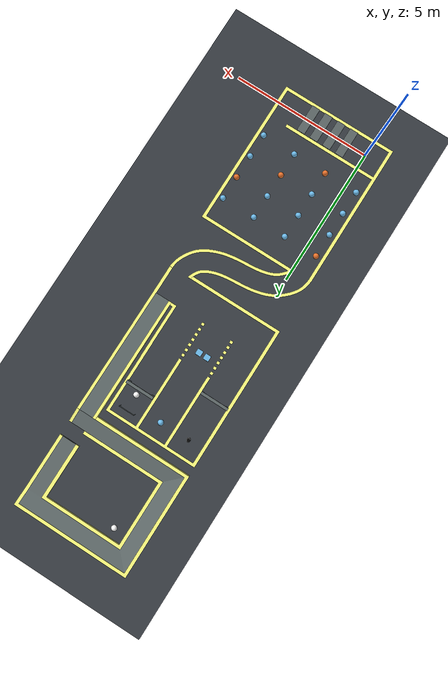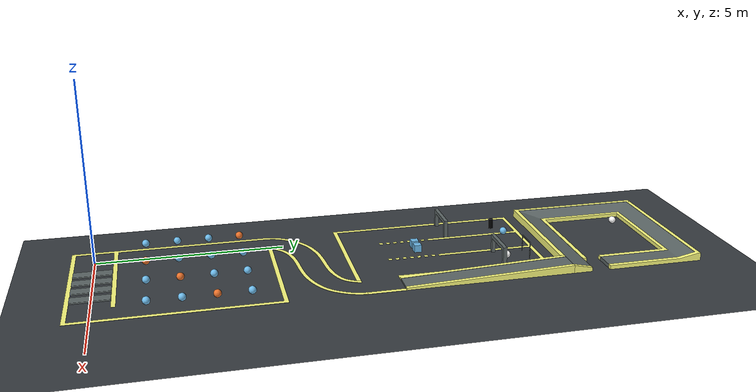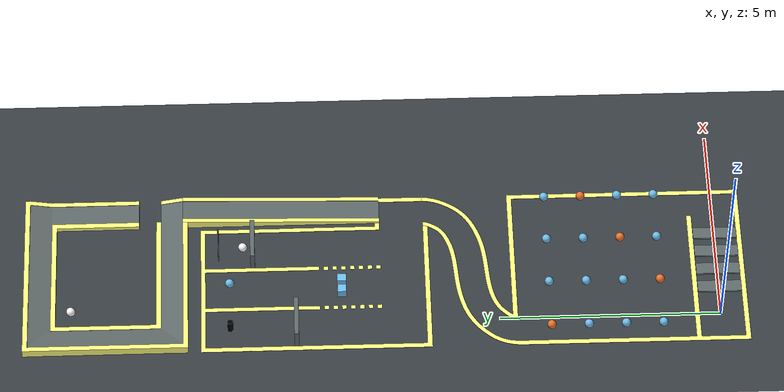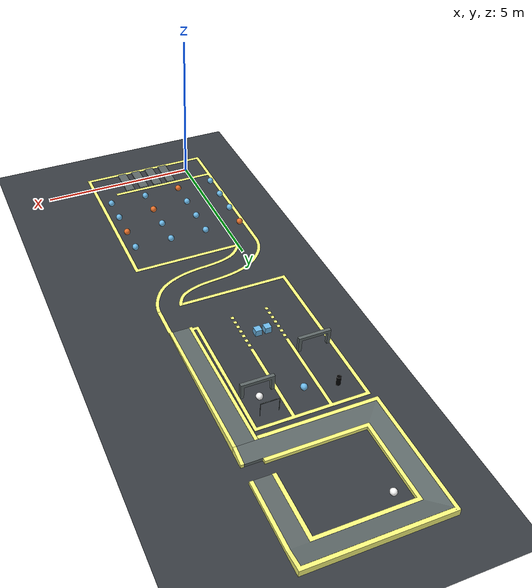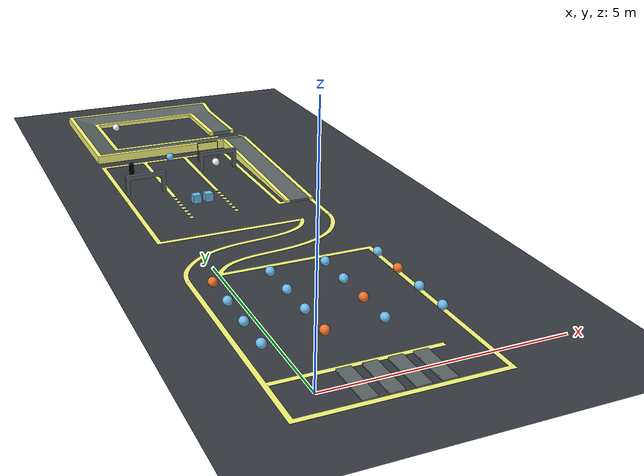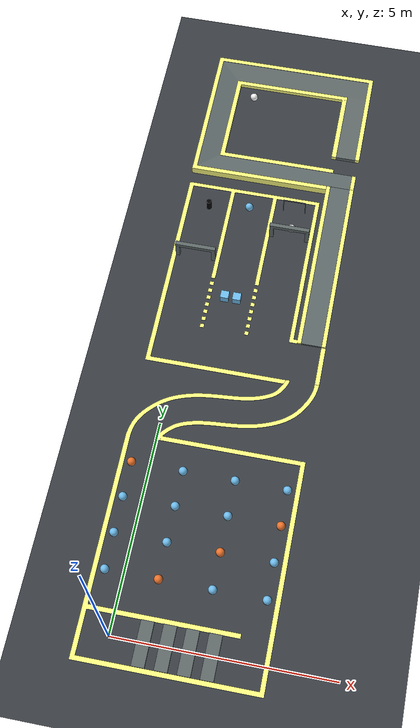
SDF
<?xml version="1.0" ?>
<sdf version="1.5">
    <world name="earth">

        <physics type="ode">
            <max_step_size>0.001</max_step_size>
            <real_time_factor>1</real_time_factor>
            <real_time_update_rate>1000</real_time_update_rate>
            <gravity>0 0 -9.81</gravity>
            <ode>
                <solver>
                <type>quick</type>
                <min_step_size>0.0001</min_step_size>
                <iters>50</iters>
                <sor>1.3</sor>
                </solver>
                <constraints>
                <cfm>0.0</cfm>
                <erp>0.2</erp>
                </constraints>
            </ode>
        </physics>

        <scene>
            <ambient>0.6 0.6 0.6 1</ambient>
            <background>0.8 0.8 0.8 1</background>
            <shadows>true</shadows>
        </scene>

        <!-- A global light source -->
        <include>
            <uri>model://sun</uri>
        </include>

		<model name="ground_plane">

			<static>true</static>
			<link name="link">
				<collision name="collision">
					<geometry>
					<plane>
							<normal>0 0 1</normal>
							<size>100 100</size>
					</plane>
					</geometry>
				<surface>
					<friction>
						<ode>
						<mu>100</mu>
						<mu2>50</mu2>
						</ode>
					</friction>
				</surface>
				</collision>
				<visual name="visual">
					<cast_shadows>false</cast_shadows>
					<geometry>
					<plane>
						<normal>0 0 1</normal>
						<size>100 100</size>
					</plane>
					</geometry>
					<material>
						<ambient>0.22 0.24 0.26 1</ambient>
							<diffuse>0.22 0.24 0.26 1</diffuse>
					</material>
				</visual>
			</link>
		</model>

        <model name='race'>
           	<pose>1.5 5.87 1.18 0 0 -1.57</pose>
      	   	<static>true</static>
           	<link name='1area_border_00'>
           	<pose>0 0 0 0 0 0</pose>
        	<visual name="1area_border_visual">
          		<geometry>
          			<mesh>
              			   <uri>/home/cyberdog_sim/src/cyberdog_simulator/cyberdog_gazebo/model/race2026_meshes/1_border.stl</uri>
              			   <scale>0.01 0.01 0.01</scale>
            			</mesh>
          		</geometry>
          		<material>
        			<ambient>1 1 0.5 1</ambient>
        			<diffuse>1 1 0.5 1</diffuse>
      			</material>
                </visual>
           	</link>

           	<link name='1area_rockroad'>
           	<collision name="1area_rockroad_collision">
                    <geometry>
                    	<mesh>
              		<uri>/home/cyberdog_sim/src/cyberdog_simulator/cyberdog_gazebo/model/race2026_meshes/1_rockroad.stl</uri>
              		<scale>0.01 0.01 0.01</scale>
            		</mesh>
                    </geometry>
                </collision>
        	<visual name="1area_rockroad_visual">
          		<geometry>
          			<mesh>
						<uri>/home/cyberdog_sim/src/cyberdog_simulator/cyberdog_gazebo/model/race2026_meshes/1_rockroad.stl</uri>
						<scale>0.01 0.01 0.01</scale>
					</mesh>
          		</geometry>
          		<material>
        			<ambient>0.37 0.41 0.41 1</ambient>
        			<diffuse>0.37 0.41 0.41 1</diffuse>
      			</material>
                </visual>
           </link>

		   <link name='2aea_bar1'>
           	<collision name="2aea_bar1_collision">
                    <geometry>
                    	<mesh>
              		<uri>/home/cyberdog_sim/src/cyberdog_simulator/cyberdog_gazebo/model/race2026_meshes/2_bar1.stl</uri>
              		<scale>0.01 0.01 0.01</scale>
            		</mesh>
                    </geometry>
                </collision>
        	<visual name="2aea_bar1_visual">
          		<geometry>
          			<mesh>
						<uri>/home/cyberdog_sim/src/cyberdog_simulator/cyberdog_gazebo/model/race2026_meshes/2_bar1.stl</uri>
						<scale>0.01 0.01 0.01</scale>
					</mesh>
          		</geometry>
          		<material>
        			<ambient>0.37 0.41 0.41 1</ambient>
        			<diffuse>0.37 0.41 0.41 1</diffuse>
      			</material>
                </visual>
           </link>

		   <link name='2aea_bar2'>
           	<collision name="2aea_bar2_collision">
                    <geometry>
                    	<mesh>
              		<uri>/home/cyberdog_sim/src/cyberdog_simulator/cyberdog_gazebo/model/race2026_meshes/2_bar2.stl</uri>
              		<scale>0.01 0.01 0.01</scale>
            		</mesh>
                    </geometry>
                </collision>
        	<visual name="2aea_bar2_visual">
          		<geometry>
          			<mesh>
						<uri>/home/cyberdog_sim/src/cyberdog_simulator/cyberdog_gazebo/model/race2026_meshes/2_bar2.stl</uri>
						<scale>0.01 0.01 0.01</scale>
					</mesh>
          		</geometry>
          		<material>
        			<ambient>0.37 0.41 0.41 1</ambient>
        			<diffuse>0.37 0.41 0.41 1</diffuse>
      			</material>
                </visual>
           </link>

		   <link name='2aea_border'>
           	<collision name="2aea_border_collision">
                    <geometry>
                    	<mesh>
              		<uri>/home/cyberdog_sim/src/cyberdog_simulator/cyberdog_gazebo/model/race2026_meshes/2_border.stl</uri>
              		<scale>0.01 0.01 0.01</scale>
            		</mesh>
                    </geometry>
                </collision>
        	<visual name="2aea_border_visual">
          		<geometry>
          			<mesh>
						<uri>/home/cyberdog_sim/src/cyberdog_simulator/cyberdog_gazebo/model/race2026_meshes/2_border.stl</uri>
						<scale>0.01 0.01 0.01</scale>
					</mesh>
          		</geometry>
          		<material>
        			<ambient>1 1 0.5 1</ambient>
        			<diffuse>1 1 0.5 1</diffuse>
      			</material>
                </visual>
           </link>

		   <link name='2aea_bridge'>
           	<collision name="2aea_bridge_collision">
                    <geometry>
                    	<mesh>
              		<uri>/home/cyberdog_sim/src/cyberdog_simulator/cyberdog_gazebo/model/race2026_meshes/2_bridge.stl</uri>
              		<scale>0.01 0.01 0.01</scale>
            		</mesh>
                    </geometry>
                </collision>
        	<visual name="2aea_bridge_visual">
          		<geometry>
          			<mesh>
						<uri>/home/cyberdog_sim/src/cyberdog_simulator/cyberdog_gazebo/model/race2026_meshes/2_bridge.stl</uri>
						<scale>0.01 0.01 0.01</scale>
					</mesh>
          		</geometry>
          		<material>
        			<ambient>0.37 0.41 0.41 1</ambient>
        			<diffuse>0.37 0.41 0.41 1</diffuse>
      			</material>
                </visual>
           </link>

		   <link name='2aea_goal'>
           	<collision name="2aea_goal_collision">
                    <geometry>
                    	<mesh>
              		<uri>/home/cyberdog_sim/src/cyberdog_simulator/cyberdog_gazebo/model/race2026_meshes/2_goal.stl</uri>
              		<scale>0.01 0.01 0.01</scale>
            		</mesh>
                    </geometry>
                </collision>
        	<visual name="2aea_goal_visual">
          		<geometry>
          			<mesh>
						<uri>/home/cyberdog_sim/src/cyberdog_simulator/cyberdog_gazebo/model/race2026_meshes/2_goal.stl</uri>
						<scale>0.01 0.01 0.01</scale>
					</mesh>
          		</geometry>
          		<material>
        			<ambient>0.37 0.41 0.41 1</ambient>
        			<diffuse>0.37 0.41 0.41 1</diffuse>
      			</material>
                </visual>
           </link>

		   <link name='2aea_obstacle'>
           	<collision name="2aea_obstacle_collision">
                    <geometry>
                    	<mesh>
              		<uri>/home/cyberdog_sim/src/cyberdog_simulator/cyberdog_gazebo/model/race2026_meshes/2_obstacle.stl</uri>
              		<scale>0.01 0.01 0.01</scale>
            		</mesh>
                    </geometry>
                </collision>
        	<visual name="2aea_obstacle_visual">
          		<geometry>
          			<mesh>
						<uri>/home/cyberdog_sim/src/cyberdog_simulator/cyberdog_gazebo/model/race2026_meshes/2_obstacle.stl</uri>
						<scale>0.01 0.01 0.01</scale>
					</mesh>
          		</geometry>
          		<material>
        			<ambient>0.43 0.74 0.93 1</ambient>
        			<diffuse>0.43 0.74 0.93 1</diffuse>
      			</material>
                </visual>
           </link>

		   <link name='3aea_border'>
		   		<collision name="3aea_border_collision">
                    <geometry>
                    	<mesh>
              		<uri>/home/cyberdog_sim/src/cyberdog_simulator/cyberdog_gazebo/model/race2026_meshes/3_border.stl</uri>
              		<scale>0.01 0.01 0.01</scale>
            		</mesh>
                    </geometry>
                </collision>
        	<visual name="3aea_border_visual">
          		<geometry>
          			<mesh>
						<uri>/home/cyberdog_sim/src/cyberdog_simulator/cyberdog_gazebo/model/race2026_meshes/3_border.stl</uri>
						<scale>0.01 0.01 0.01</scale>
					</mesh>
          		</geometry>
          		<material>
        			<ambient>1 1 0.5 1</ambient>
        			<diffuse>1 1 0.5 1</diffuse>
      			</material>
                </visual>
           </link>

		   <link name='3aea_slope'>
           	<collision name="3aea_slope_collision">
                    <geometry>
                    	<mesh>
              		<uri>/home/cyberdog_sim/src/cyberdog_simulator/cyberdog_gazebo/model/race2026_meshes/3_slope.stl</uri>
              		<scale>0.01 0.01 0.01</scale>
            		</mesh>
                    </geometry>
                </collision>
        	<visual name="3aea_slope_visual">
          		<geometry>
          			<mesh>
						<uri>/home/cyberdog_sim/src/cyberdog_simulator/cyberdog_gazebo/model/race2026_meshes/3_slope.stl</uri>
						<scale>0.01 0.01 0.01</scale>
					</mesh>
          		</geometry>
          		<material>
        			<ambient>0.37 0.41 0.41 1</ambient>
        			<diffuse>0.37 0.41 0.41 1</diffuse>
      			</material>
                </visual>
           </link>

     	</model>

		<model name="football2">
		   <pose> 2.1 10.8 0.1 0 0 0</pose>
		   <link name='2aea_football'>
           	<collision name="2aea_football_collision">
                    <geometry>
						<sphere>
							<radius>0.1</radius>
						</sphere>
                    </geometry>
                </collision>
        	<visual name="2aea_football_visual">
          		<geometry>
					<sphere>
						<radius>0.1</radius>
					</sphere>
          		</geometry>
          		<material>
        			<ambient>1 1 1 1</ambient>
        			<diffuse>1 1 1 1</diffuse>
      			</material>
                </visual>
           </link>

		</model>

		<model name="coke">
		   <pose> -0.1 11.1 0.1 0 0 0</pose>
		   <link name='2aea_coke'>
           	<collision name="2aea_coke_collision">
                    <geometry>
                    	<cylinder>
						 <radius>0.065</radius>
						 <length>0.34</length>
						</cylinder>
                    </geometry>
                </collision>
        	<visual name="2aea_coke_visual">
          		<geometry>
          			<cylinder>
						 <radius>0.065</radius>
						 <length>0.34</length>
					</cylinder>
          		</geometry>
          		<material>
        			<ambient>0 0 0 1</ambient>
        			<diffuse>0 0 0 1</diffuse>
      			</material>
                </visual>
           </link>
		</model>

		<model name="football3">
		   <pose>0.4 14.7 0.1 0 0 0</pose>
		   <link name='3aea_football'>
           	<collision name="3aea_football_collision">
                    <geometry>
                    	<sphere>
						  <radius>0.1</radius>
						</sphere>
                    </geometry>
                </collision>
        	<visual name="3aea_football_visual">
          		<geometry>
          			<sphere>
						<radius>0.1</radius>
					</sphere>
          		</geometry>
          		<material>
        			<ambient>1 1 1 1</ambient>
        			<diffuse>1 1 1 1</diffuse>
      			</material>
                </visual>
           </link>
        </model>

		<model name="hanging_ball">
			<link name="base_link"></link>

			<link name='2area_ball'>
			  <pose> 0.95 11.1 0.3 0 0 0</pose>
           	  <collision name="2area_ball_collision">
                  <geometry>
					<sphere>
						<radius>0.1</radius>
					</sphere>
          		  </geometry>
              </collision>
        	  <visual name="2area_ball_visual">
          		<geometry>
					<sphere>
						<radius>0.1</radius>
					</sphere>
          		</geometry>
          		<material>
        			<ambient>0.43 0.74 0.93 1</ambient>
        			<diffuse>0.43 0.74 0.93 1</diffuse>
      			</material>
              </visual>
           </link>

			<joint name="2area_ball_joint" type="ball">
				<pose>0 0 0.3 0 0 0</pose>
				<parent>base_link</parent>
				<child>2area_ball</child>
				<dynamics>
        			<damping>0.5</damping>
      			</dynamics>
    		</joint>

			<link name='1area_ball1_1'>
			  <pose> -0.4 1.34 0.3 0 0 0</pose>
           	  <collision name="1area_ball_collision">
                  <geometry>
					<sphere>
						<radius>0.1</radius>
					</sphere>
          		  </geometry>
              </collision>
        	  <visual name="1area_ball_visual">
          		<geometry>
					<sphere>
						<radius>0.1</radius>
					</sphere>
          		</geometry>
          		<material>
        			<ambient>0.43 0.74 0.93 1</ambient>
        			<diffuse>0.43 0.74 0.93 1</diffuse>
      			</material>
              </visual>
           </link>

			<joint name="1area_ball1_1_joint" type="ball">
				<pose>0 0 0.3 0 0 0</pose>
				<parent>base_link</parent>
				<child>1area_ball1_1</child>
				<dynamics>
        			<damping>0.5</damping>
      			</dynamics>
    		</joint>

			<joint name="world_to_base" type="fixed">
      			<parent>world</parent>
      			<child>base_link</child>
      			<pose>0 0 0 0 0 0</pose>
    		</joint>

			<link name='1area_ball1_2'>
			  <pose> 0.8 1.34 0.3 0 0 0</pose>
           	  <collision name="1area_ball_collision">
                  <geometry>
					<sphere>
						<radius>0.1</radius>
					</sphere>
          		  </geometry>
              </collision>
        	  <visual name="1area_ball_visual">
          		<geometry>
					<sphere>
						<radius>0.1</radius>
					</sphere>
          		</geometry>
          		<material>
        			<ambient>0.92 0.45 0.17 1</ambient>
        			<diffuse>0.92 0.45 0.17 1</diffuse>
      			</material>
              </visual>
           </link>

			<joint name="1area_ball1_2_joint" type="ball">
				<pose>0 0 0.3 0 0 0</pose>
				<parent>base_link</parent>
				<child>1area_ball1_2</child>
				<dynamics>
        			<damping>0.5</damping>
      			</dynamics>
    		</joint>

			<link name='1area_ball1_3'>
			  <pose> 2 1.34 0.3 0 0 0</pose>
           	  <collision name="1area_ball_collision">
                  <geometry>
					<sphere>
						<radius>0.1</radius>
					</sphere>
          		  </geometry>
              </collision>
        	  <visual name="1area_ball_visual">
          		<geometry>
					<sphere>
						<radius>0.1</radius>
					</sphere>
          		</geometry>
          		<material>
        			<ambient>0.43 0.74 0.93 1</ambient>
        			<diffuse>0.43 0.74 0.93 1</diffuse>
      			</material>
              </visual>
           </link>

			<joint name="1area_ball1_3_joint" type="ball">
				<pose>0 0 0.3 0 0 0</pose>
				<parent>base_link</parent>
				<child>1area_ball1_3</child>
				<dynamics>
        			<damping>0.5</damping>
      			</dynamics>
    		</joint>

			<link name='1area_ball1_4'>
			  <pose> 3.2 1.34 0.3 0 0 0</pose>
           	  <collision name="1area_ball_collision">
                  <geometry>
					<sphere>
						<radius>0.1</radius>
					</sphere>
          		  </geometry>
              </collision>
        	  <visual name="1area_ball_visual">
          		<geometry>
					<sphere>
						<radius>0.1</radius>
					</sphere>
          		</geometry>
          		<material>
        			<ambient>0.43 0.74 0.93 1</ambient>
        			<diffuse>0.43 0.74 0.93 1</diffuse>
      			</material>
              </visual>
           </link>

			<joint name="1area_ball1_4_joint" type="ball">
				<pose>0 0 0.3 0 0 0</pose>
				<parent>base_link</parent>
				<child>1area_ball1_4</child>
				<dynamics>
        			<damping>0.5</damping>
      			</dynamics>
    		</joint>

			<link name='1area_ball2_1'>
			  <pose> -0.4 2.18 0.3 0 0 0</pose>
           	  <collision name="1area_ball_collision">
                  <geometry>
					<sphere>
						<radius>0.1</radius>
					</sphere>
          		  </geometry>
              </collision>
        	  <visual name="1area_ball_visual">
          		<geometry>
					<sphere>
						<radius>0.1</radius>
					</sphere>
          		</geometry>
          		<material>
        			<ambient>0.43 0.74 0.93 1</ambient>
        			<diffuse>0.43 0.74 0.93 1</diffuse>
      			</material>
              </visual>
           </link>

			<joint name="1area_ball2_1_joint" type="ball">
				<pose>0 0 0.3 0 0 0</pose>
				<parent>base_link</parent>
				<child>1area_ball2_1</child>
				<dynamics>
        			<damping>0.5</damping>
      			</dynamics>
    		</joint>

			<link name='1area_ball2_2'>
			  <pose> 0.8 2.18 0.3 0 0 0</pose>
           	  <collision name="1area_ball_collision">
                  <geometry>
					<sphere>
						<radius>0.1</radius>
					</sphere>
          		  </geometry>
              </collision>
        	  <visual name="1area_ball_visual">
          		<geometry>
					<sphere>
						<radius>0.1</radius>
					</sphere>
          		</geometry>
          		<material>
        			<ambient>0.43 0.74 0.93 1</ambient>
        			<diffuse>0.43 0.74 0.93 1</diffuse>
      			</material>
              </visual>
           </link>

			<joint name="1area_ball2_2_joint" type="ball">
				<pose>0 0 0.3 0 0 0</pose>
				<parent>base_link</parent>
				<child>1area_ball2_2</child>
				<dynamics>
        			<damping>0.5</damping>
      			</dynamics>
    		</joint>

			<link name='1area_ball2_3'>
			  <pose> 2 2.18 0.3 0 0 0</pose>
           	  <collision name="1area_ball_collision">
                  <geometry>
					<sphere>
						<radius>0.1</radius>
					</sphere>
          		  </geometry>
              </collision>
        	  <visual name="1area_ball_visual">
          		<geometry>
					<sphere>
						<radius>0.1</radius>
					</sphere>
          		</geometry>
          		<material>
					<ambient>0.92 0.45 0.17 1</ambient>
        			<diffuse>0.92 0.45 0.17 1</diffuse>
      			</material>
              </visual>
           </link>

			<joint name="1area_ball2_3_joint" type="ball">
				<pose>0 0 0.3 0 0 0</pose>
				<parent>base_link</parent>
				<child>1area_ball2_3</child>
				<dynamics>
        			<damping>0.5</damping>
      			</dynamics>
    		</joint>

			<link name='1area_ball2_4'>
			  <pose> 3.2 2.18 0.3 0 0 0</pose>
           	  <collision name="1area_ball_collision">
                  <geometry>
					<sphere>
						<radius>0.1</radius>
					</sphere>
          		  </geometry>
              </collision>
        	  <visual name="1area_ball_visual">
          		<geometry>
					<sphere>
						<radius>0.1</radius>
					</sphere>
          		</geometry>
          		<material>
        			<ambient>0.43 0.74 0.93 1</ambient>
        			<diffuse>0.43 0.74 0.93 1</diffuse>
      			</material>
              </visual>
           </link>

			<joint name="1area_ball2_4_joint" type="ball">
				<pose>0 0 0.3 0 0 0</pose>
				<parent>base_link</parent>
				<child>1area_ball2_4</child>
				<dynamics>
        			<damping>0.5</damping>
      			</dynamics>
    		</joint>

			<link name='1area_ball3_1'>
			  <pose> -0.4 3.02 0.3 0 0 0</pose>
           	  <collision name="1area_ball_collision">
                  <geometry>
					<sphere>
						<radius>0.1</radius>
					</sphere>
          		  </geometry>
              </collision>
        	  <visual name="1area_ball_visual">
          		<geometry>
					<sphere>
						<radius>0.1</radius>
					</sphere>
          		</geometry>
          		<material>
        			<ambient>0.43 0.74 0.93 1</ambient>
        			<diffuse>0.43 0.74 0.93 1</diffuse>
      			</material>
              </visual>
           </link>

			<joint name="1area_ball3_1_joint" type="ball">
				<pose>0 0 0.3 0 0 0</pose>
				<parent>base_link</parent>
				<child>1area_ball3_1</child>
				<dynamics>
        			<damping>0.5</damping>
      			</dynamics>
    		</joint>

			<link name='1area_ball3_2'>
			  <pose> 0.8 3.02 0.3 0 0 0</pose>
           	  <collision name="1area_ball_collision">
                  <geometry>
					<sphere>
						<radius>0.1</radius>
					</sphere>
          		  </geometry>
              </collision>
        	  <visual name="1area_ball_visual">
          		<geometry>
					<sphere>
						<radius>0.1</radius>
					</sphere>
          		</geometry>
          		<material>
        			<ambient>0.43 0.74 0.93 1</ambient>
        			<diffuse>0.43 0.74 0.93 1</diffuse>
      			</material>
              </visual>
           </link>

			<joint name="1area_ball3_2_joint" type="ball">
				<pose>0 0 0.3 0 0 0</pose>
				<parent>base_link</parent>
				<child>1area_ball3_2</child>
				<dynamics>
        			<damping>0.5</damping>
      			</dynamics>
    		</joint>

			<link name='1area_ball3_3'>
			  <pose> 2 3.02 0.3 0 0 0</pose>
           	  <collision name="1area_ball_collision">
                  <geometry>
					<sphere>
						<radius>0.1</radius>
					</sphere>
          		  </geometry>
              </collision>
        	  <visual name="1area_ball_visual">
          		<geometry>
					<sphere>
						<radius>0.1</radius>
					</sphere>
          		</geometry>
          		<material>
        			<ambient>0.43 0.74 0.93 1</ambient>
        			<diffuse>0.43 0.74 0.93 1</diffuse>
      			</material>
              </visual>
           </link>

			<joint name="1area_ball3_3_joint" type="ball">
				<pose>0 0 0.3 0 0 0</pose>
				<parent>base_link</parent>
				<child>1area_ball3_3</child>
				<dynamics>
        			<damping>0.5</damping>
      			</dynamics>
    		</joint>

			<link name='1area_ball3_4'>
			  <pose> 3.2 3.02 0.3 0 0 0</pose>
           	  <collision name="1area_ball_collision">
                  <geometry>
					<sphere>
						<radius>0.1</radius>
					</sphere>
          		  </geometry>
              </collision>
        	  <visual name="1area_ball_visual">
          		<geometry>
					<sphere>
						<radius>0.1</radius>
					</sphere>
          		</geometry>
          		<material>
        			<ambient>0.92 0.45 0.17 1</ambient>
        			<diffuse>0.92 0.45 0.17 1</diffuse>
      			</material>
              </visual>
           </link>

			<joint name="1area_ball3_4_joint" type="ball">
				<pose>0 0 0.3 0 0 0</pose>
				<parent>base_link</parent>
				<child>1area_ball3_4</child>
				<dynamics>
        			<damping>0.5</damping>
      			</dynamics>
    		</joint>

		</model>

		<model name="hanging_ball2">
			<link name="base_link2"></link>

			<joint name="world_to_base2" type="fixed">
      			<parent>world</parent>
      			<child>base_link2</child>
      			<pose>0 0 0 0 0 0</pose>
    		</joint>

			<link name='1area_ball4_1'>
			  <pose> -0.4 3.86 0.3 0 0 0</pose>
           	  <collision name="1area_ball_collision">
                  <geometry>
					<sphere>
						<radius>0.1</radius>
					</sphere>
          		  </geometry>
              </collision>
        	  <visual name="1area_ball_visual">
          		<geometry>
					<sphere>
						<radius>0.1</radius>
					</sphere>
          		</geometry>
          		<material>
        			<ambient>0.92 0.45 0.17 1</ambient>
        			<diffuse>0.92 0.45 0.17 1</diffuse>
      			</material>
              </visual>
           </link>

			<joint name="1area_ball4_1_joint" type="ball">
				<pose>0 0 0.3 0 0 0</pose>
				<parent>base_link2</parent>
				<child>1area_ball4_1</child>
				<dynamics>
        			<damping>0.5</damping>
      			</dynamics>
    		</joint>

			<link name='1area_ball4_2'>
			  <pose> 0.8 3.86 0.3 0 0 0</pose>
           	  <collision name="1area_ball_collision">
                  <geometry>
					<sphere>
						<radius>0.1</radius>
					</sphere>
          		  </geometry>
              </collision>
        	  <visual name="1area_ball_visual">
          		<geometry>
					<sphere>
						<radius>0.1</radius>
					</sphere>
          		</geometry>
          		<material>
        			<ambient>0.43 0.74 0.93 1</ambient>
        			<diffuse>0.43 0.74 0.93 1</diffuse>
      			</material>
              </visual>
           </link>

			<joint name="1area_ball4_2_joint" type="ball">
				<pose>0 0 0.3 0 0 0</pose>
				<parent>base_link2</parent>
				<child>1area_ball4_2</child>
				<dynamics>
        			<damping>0.5</damping>
      			</dynamics>
    		</joint>

			<link name='1area_ball4_3'>
			  <pose> 2 3.86 0.3 0 0 0</pose>
           	  <collision name="1area_ball_collision">
                  <geometry>
					<sphere>
						<radius>0.1</radius>
					</sphere>
          		  </geometry>
              </collision>
        	  <visual name="1area_ball_visual">
          		<geometry>
					<sphere>
						<radius>0.1</radius>
					</sphere>
          		</geometry>
          		<material>
        			<ambient>0.43 0.74 0.93 1</ambient>
        			<diffuse>0.43 0.74 0.93 1</diffuse>
      			</material>
              </visual>
           </link>

			<joint name="1area_ball4_3_joint" type="ball">
				<pose>0 0 0.3 0 0 0</pose>
				<parent>base_link2</parent>
				<child>1area_ball4_3</child>
				<dynamics>
        			<damping>0.5</damping>
      			</dynamics>
    		</joint>

			<link name='1area_ball4_4'>
			  <pose> 3.2 3.86 0.3 0 0 0</pose>
           	  <collision name="1area_ball_collision">
                  <geometry>
					<sphere>
						<radius>0.1</radius>
					</sphere>
          		  </geometry>
              </collision>
        	  <visual name="1area_ball_visual">
          		<geometry>
					<sphere>
						<radius>0.1</radius>
					</sphere>
          		</geometry>
          		<material>
        			<ambient>0.43 0.74 0.93 1</ambient>
        			<diffuse>0.43 0.74 0.93 1</diffuse>
      			</material>
              </visual>
           </link>

			<joint name="1area_ball4_4_joint" type="ball">
				<pose>0 0 0.3 0 0 0</pose>
				<parent>base_link2</parent>
				<child>1area_ball4_4</child>
				<dynamics>
        			<damping>0.5</damping>
      			</dynamics>
    		</joint>
		</model>
    </world>
</sdf>
